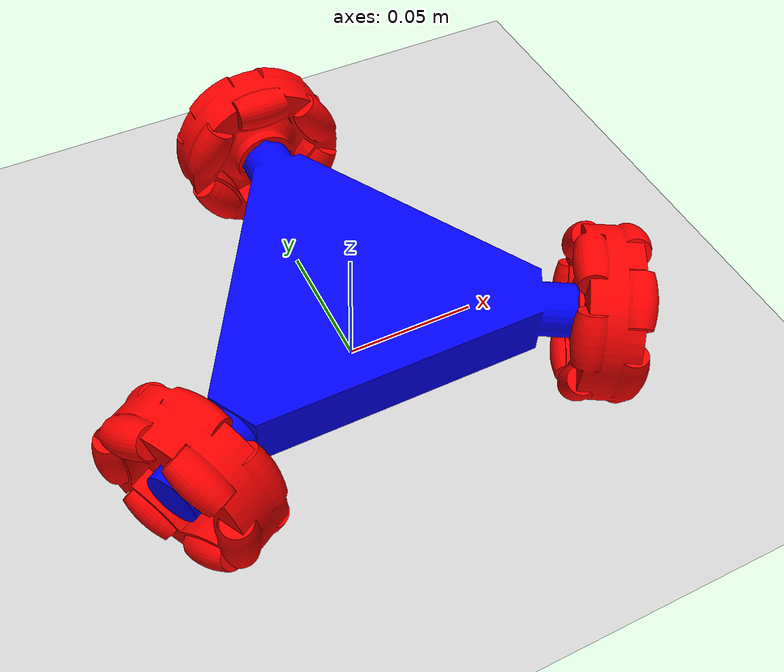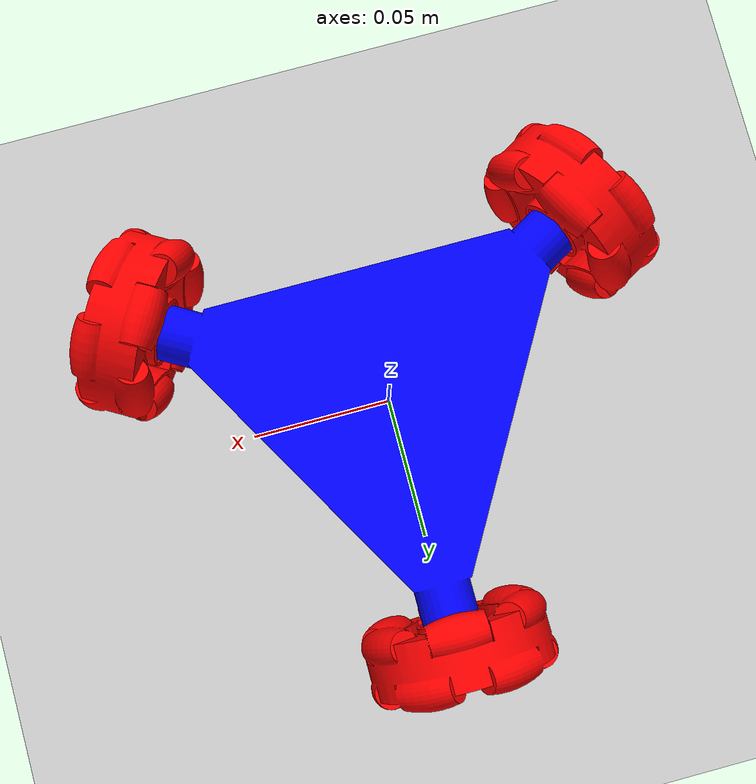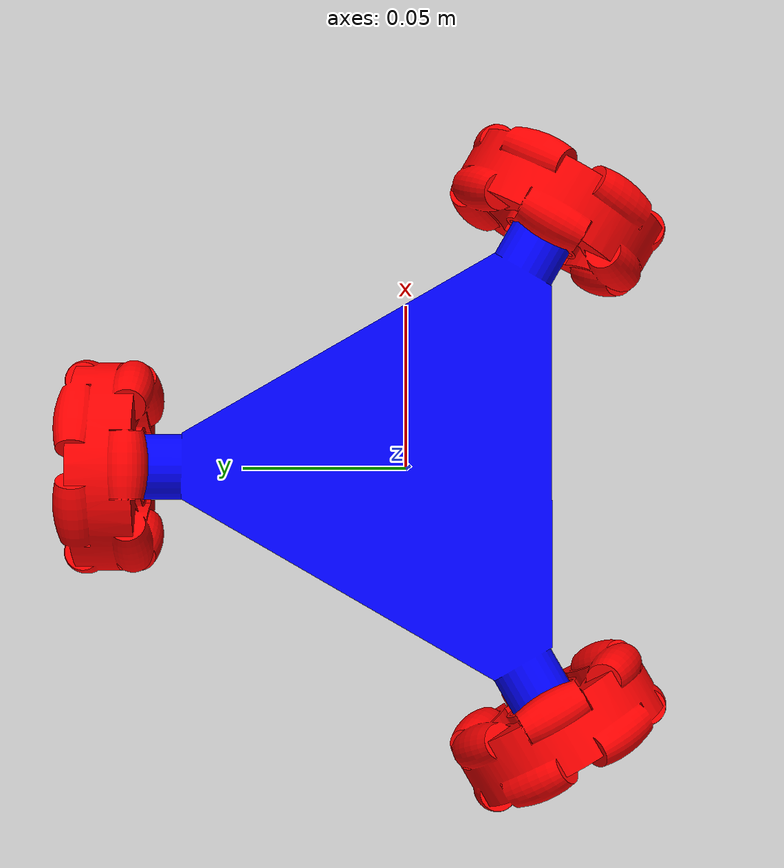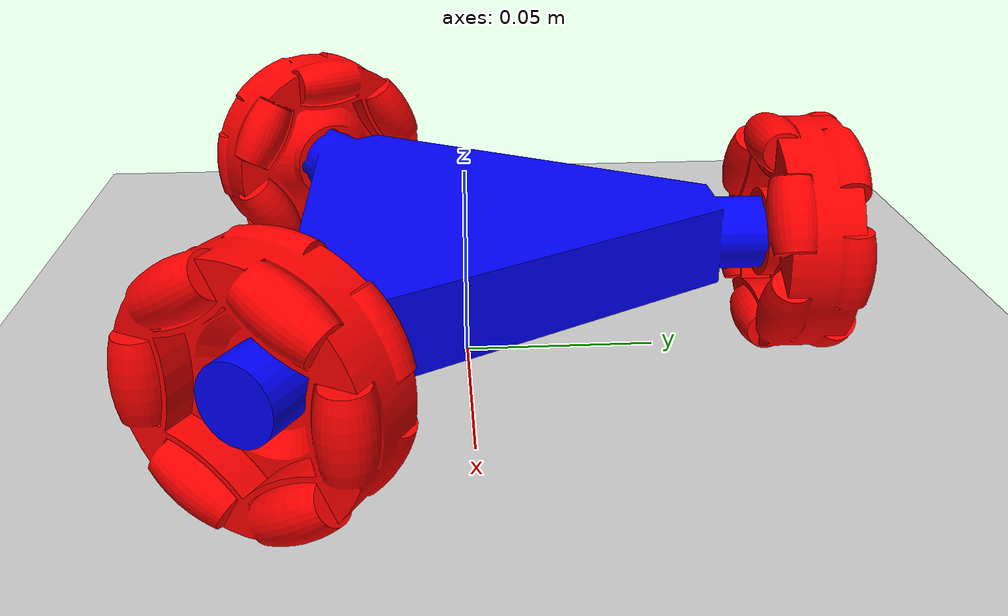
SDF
<?xml version="1.0" ?>
<sdf version="1.10">
    <world name="car_world">
        <physics name="1ms" type="ignored">
            <max_step_size>0.001</max_step_size>
            <real_time_factor>1.0</real_time_factor>
        </physics>
        <plugin
            filename="gz-sim-physics-system"
            name="gz::sim::systems::Physics">
        </plugin>
        <plugin
            filename="gz-sim-user-commands-system"
            name="gz::sim::systems::UserCommands">
        </plugin>
        <plugin
            filename="gz-sim-scene-broadcaster-system"
            name="gz::sim::systems::SceneBroadcaster">
        </plugin>

        <light type="directional" name="sun">
            <cast_shadows>true</cast_shadows>
            <pose>0 0 10 0 0 0</pose>
            <diffuse>0.8 0.8 0.8 1</diffuse>
            <specular>0.2 0.2 0.2 1</specular>
            <attenuation>
                <range>1000</range>
                <constant>0.9</constant>
                <linear>0.01</linear>
                <quadratic>0.001</quadratic>
            </attenuation>
            <direction>-0.5 0.1 -0.9</direction>
        </light>

        <model name="ground_plane">
            <static>true</static>
            <link name="link">
                <collision name="collision">
                <geometry>
                    <plane>
                    <normal>0 0 1</normal>
                    </plane>
                </geometry>
                </collision>
                <visual name="visual">
                <geometry>
                    <plane>
                    <normal>0 0 1</normal>
                    <size>100 100</size>
                    </plane>
                </geometry>
                <material>
                    <ambient>0.8 0.8 0.8 1</ambient>
                    <diffuse>0.8 0.8 0.8 1</diffuse>
                    <specular>0.8 0.8 0.8 1</specular>
                </material>
                </visual>
            </link>
        </model>

        <model name='myRobot' canonical_link='chassis'>
            <pose relative_to='world'>0 0 0 0 0 0</pose>

            <!-- robot's body -->
            <link name='chassis'>
                <pose relative_to='__model__'>-0.07 -0.0404145188433 0.03175 0 0 0</pose>
                <inertial> <!--inertial properties of the link mass, inertia matix-->
                    <mass>3</mass>
                    <inertia>
                        <ixx>0.1</ixx>
                        <ixy>0</ixy>
                        <ixz>0</ixz>
                        <iyy>0.1</iyy>
                        <iyz>0</iyz>
                        <izz>0.1</izz>
                    </inertia>
                </inertial>
                <visual name='visual'>
                    <geometry>
                        <mesh>
                            <uri>model://home/dev/01.work_space/18.test_gazebo/meshes/robot.stl</uri>
                            <scale>0.001 0.001 0.001</scale>
                        </mesh>
                    </geometry>
                    <!--let's add color to our link-->
                    <material>
                        <ambient>0.0 0.0 1.0 1</ambient>
                        <diffuse>0.0 0.0 1.0 1</diffuse>
                        <specular>0.0 0.0 1.0 1</specular>
                    </material>
                </visual>
                <collision name='collision'> <!--todo: describe why we need the collision-->
                    <geometry>
                        <mesh>
                            <uri>model://home/dev/01.work_space/18.test_gazebo/meshes/robot.stl</uri>
                            <scale>0.001 0.001 0.001</scale>
                        </mesh>
                    </geometry>
                </collision>
            </link>

            <link name='wheel_1'>
                <pose relative_to="chassis">0.07 0.135 0 1.5708 0 0</pose> <!--angles are in radian-->
                <inertial>
                    <mass>2</mass>
                    <inertia>
                        <ixx>0.145833</ixx>
                        <ixy>0</ixy>
                        <ixz>0</ixz>
                        <iyy>0.145833</iyy>
                        <iyz>0</iyz>
                        <izz>0.125</izz>
                    </inertia>
                </inertial>
                <visual name='visual'>
                    <geometry>
                        <mesh>
                            <uri>model://home/dev/01.work_space/18.test_gazebo/meshes/2.5inch-65276-omni-wheel.stl</uri>
                            <scale>0.001 0.001 0.001</scale>
                        </mesh>
                    </geometry>
                    <material>
                        <ambient>1.0 0.0 0.0 1</ambient>
                        <diffuse>1.0 0.0 0.0 1</diffuse>
                        <specular>1.0 0.0 0.0 1</specular>
                    </material>
                </visual>
                <collision name='collision'>
                    <geometry>
                        <mesh>
                            <uri>model://home/dev/01.work_space/18.test_gazebo/meshes/2.5inch-65276-omni-wheel.stl</uri>
                            <scale>0.001 0.001 0.001</scale>
                        </mesh>
                    </geometry>
                </collision>
            </link>

            <link name='wheel_2'>
                <pose relative_to="chassis">-0.0119134295109 -0.0068782217351 0 1.5708 0 2.0944</pose> <!--angles are in radian-->
                <inertial>
                    <mass>2</mass>
                    <inertia>
                        <ixx>0.145833</ixx>
                        <ixy>0</ixy>
                        <ixz>0</ixz>
                        <iyy>0.145833</iyy>
                        <iyz>0</iyz>
                        <izz>0.125</izz>
                    </inertia>
                </inertial>
                <visual name='visual'>
                    <geometry>
                        <mesh>
                            <uri>model://home/dev/01.work_space/18.test_gazebo/meshes/2.5inch-65276-omni-wheel.stl</uri>
                            <scale>0.001 0.001 0.001</scale>
                        </mesh>
                    </geometry>
                    <material>
                        <ambient>1.0 0.0 0.0 1</ambient>
                        <diffuse>1.0 0.0 0.0 1</diffuse>
                        <specular>1.0 0.0 0.0 1</specular>
                    </material>
                </visual>
                <collision name='collision'>
                    <geometry>
                        <mesh>
                            <uri>model://home/dev/01.work_space/18.test_gazebo/meshes/2.5inch-65276-omni-wheel.stl</uri>
                            <scale>0.001 0.001 0.001</scale>
                        </mesh>
                    </geometry>
                </collision>
            </link>

            <link name='wheel_3'>
                <pose relative_to="chassis">0.1519134295109 -0.0068782217351 0 1.5708 0 -2.0944</pose> <!--angles are in radian-->
                <inertial>
                    <mass>2</mass>
                    <inertia>
                        <ixx>0.145833</ixx>
                        <ixy>0</ixy>
                        <ixz>0</ixz>
                        <iyy>0.145833</iyy>
                        <iyz>0</iyz>
                        <izz>0.125</izz>
                    </inertia>
                </inertial>
                <visual name='visual'>
                    <geometry>
                        <mesh>
                            <uri>model://home/dev/01.work_space/18.test_gazebo/meshes/2.5inch-65276-omni-wheel.stl</uri>
                            <scale>0.001 0.001 0.001</scale>
                        </mesh>
                    </geometry>
                    <material>
                        <ambient>1.0 0.0 0.0 1</ambient>
                        <diffuse>1.0 0.0 0.0 1</diffuse>
                        <specular>1.0 0.0 0.0 1</specular>
                    </material>
                </visual>
                <collision name='collision'>
                    <geometry>
                        <mesh>
                            <uri>model://home/dev/01.work_space/18.test_gazebo/meshes/2.5inch-65276-omni-wheel.stl</uri>
                            <scale>0.001 0.001 0.001</scale>
                        </mesh>
                    </geometry>
                </collision>
            </link>

            <!--connecting these links together using joints-->
            <joint name='first_wheel_joint' type='revolute'> <!--continous joint is not supported yet-->
                <pose relative_to='wheel_1'/>
                <parent>chassis</parent>
                <child>wheel_1</child>
                <axis>
                    <xyz expressed_in='wheel_1'>0 0 1</xyz> <!--can be defined as any frame or even arbitrary frames-->
                    <limit>
                        <lower>-1.79769e+308</lower>    <!--negative infinity-->
                        <upper>1.79769e+308</upper>     <!--positive infinity-->
                    </limit>
                </axis>
            </joint>

            <joint name='second_wheel_joint' type='revolute'> <!--continous joint is not supported yet-->
                <pose relative_to='wheel_2'/>
                <parent>chassis</parent>
                <child>wheel_2</child>
                <axis>
                    <xyz expressed_in='wheel_2'>0 0 1</xyz> <!--can be defined as any frame or even arbitrary frames-->
                    <limit>
                        <lower>-1.79769e+308</lower>    <!--negative infinity-->
                        <upper>1.79769e+308</upper>     <!--positive infinity-->
                    </limit>
                </axis>
            </joint>

            <joint name='third_wheel_joint' type='revolute'> <!--continous joint is not supported yet-->
                <pose relative_to='wheel_3'/>
                <parent>chassis</parent>
                <child>wheel_3</child>
                <axis>
                    <xyz expressed_in='wheel_3'>0 0 1</xyz> <!--can be defined as any frame or even arbitrary frames-->
                    <limit>
                        <lower>-1.79769e+308</lower>    <!--negative infinity-->
                        <upper>1.79769e+308</upper>     <!--positive infinity-->
                    </limit>
                </axis>
            </joint>

            <plugin
                filename="gz-sim-joint-controller-system"
                name="gz::sim::systems::JointController">
                <joint_name>first_wheel_joint</joint_name>

            </plugin>
            <plugin
                filename="gz-sim-joint-controller-system"
                name="gz::sim::systems::JointController">
                <joint_name>second_wheel_joint</joint_name>

            </plugin>
            <plugin
                filename="gz-sim-joint-controller-system"
                name="gz::sim::systems::JointController">
                <joint_name>third_wheel_joint</joint_name>

            </plugin>

        </model>

    </world>
</sdf>
